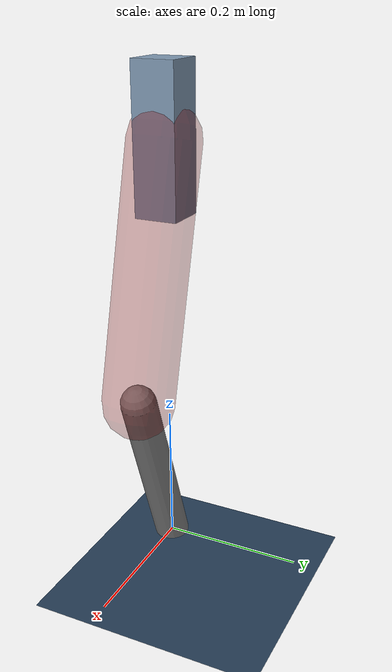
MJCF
<mujoco model="Hopper2D">
	<compiler inertiafromgeom="true" angle="radian" />
	<option timestep="0.001" integrator="implicit" cone="elliptic" solver="Newton" tolerance="1e-10" />

	<default>
		<geom contype="1" conaffinity="1" condim="3" friction="2 0.005 0.0001" solref="0.005 1" />
		<joint limited="true" damping="0.1" />
	</default>

	<asset>
		<texture name="skybox" type="skybox" builtin="gradient" rgb1=".4 .6 .8" rgb2="0 0 0" width="800" height="800" />
		<texture name="grid" type="2d" builtin="checker" rgb1=".1 .2 .3" rgb2=".2 .3 .4" width="300" height="300" mark="edge" markrgb=".2 .3 .4" />
		<material name="ground" texture="grid" texrepeat="1 1" texuniform="true" reflectance="0.1" />
		<material name="leg" rgba="0.5 0.6 0.7 1" />
	</asset>

	<worldbody>

		<geom name="floor" type="plane" size="5 5 0.25" material="ground" />

		<light directional="false" diffuse="0.8 0.8 0.8" specular="0.3 0.3 0.3" pos="0 0 2" dir="0 0 -1" />
		<light mode="targetbodycom" target="base" directional="false" diffuse="0.8 0.8 0.8" specular="0.3 0.3 0.3" pos="0 0 2" dir="0 0 -1" />

		<camera name="fixed" pos="0 -2 1" xyaxes="1 0 0 0 0 1" />
		<camera name="tracking" mode="trackcom" pos="0 -3 1" />

		<body name="root" pos="0 0 0.5967436016700656">
			<joint name="slide_x" type="slide" axis="1 0 0" range="-100 100" />
			<joint name="slide_z" type="slide" axis="0 0 1" range="0 10" />

			<body name="base" pos="0 0 0">
				<geom name="torso" type="box" size="0.03 0.03 0.1" mass="2.999" material="leg" />

				<body name="link1" pos="0 0 0" euler="0 1.311103126549149 0">
					<joint type="hinge" axis="0 -1 0" pos="0 0 0" name="hinge1" limited="true" range="-3.14 3.14" stiffness="0" damping="0.1" />
					<geom name="thigh" type="capsule" fromto="0 0 0 0.34877863921284247 0 0" size="0.05" rgba="0.5 0 0 0.3" mass="1.1232801897959588" />

					<body name="link2" pos="0.34877863921284247 0 0" euler="0 0.5918314382543315 0">
						<joint type="hinge" axis="0 -1 0" pos="0 0 0" name="hinge2" limited="true" range="-3.14 3.14" stiffness="0" damping="0.1" />
						<geom name="shank" type="capsule" fromto="0 0 0 0.2746714641110878 0 0" size="0.025" mass="0.4627371712888702" />

					</body>
				</body>
			</body>
		</body>
	</worldbody>

	<actuator>
		<motor name="torque1" joint="hinge1" ctrlrange="-121.46525755091821 121.46525755091821" ctrllimited="true" gear="1" />
		<motor name="torque2" joint="hinge2" ctrlrange="-86.7096037689714 86.7096037689714" ctrllimited="true" gear="1" />
	</actuator>
</mujoco>
